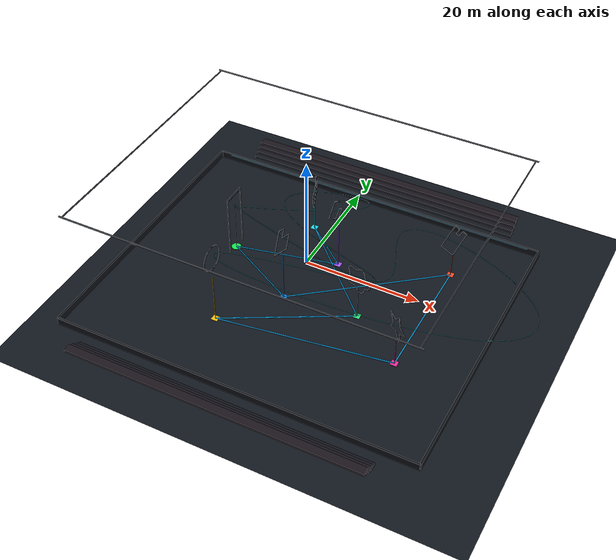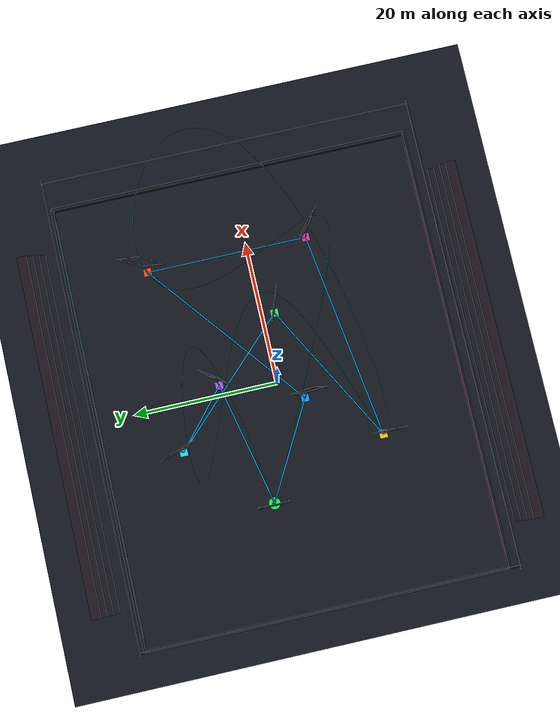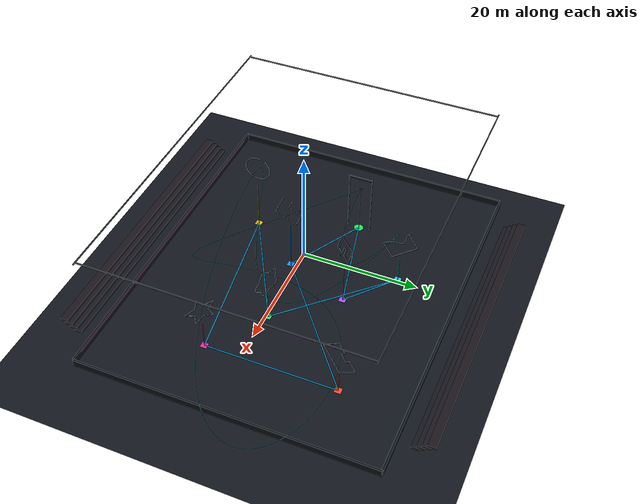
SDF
<?xml version="1.0" ?>
<sdf version="1.9"><world name="seven_unique_high_fidelity">
  <physics name="one_millisecond" type="dart"><max_step_size>0.001</max_step_size><real_time_factor>1</real_time_factor></physics>
  <plugin filename="gz-sim-physics-system" name="gz::sim::systems::Physics"/>
  <plugin filename="gz-sim-user-commands-system" name="gz::sim::systems::UserCommands"/>
  <plugin filename="gz-sim-scene-broadcaster-system" name="gz::sim::systems::SceneBroadcaster"/>
  <plugin filename="gz-sim-contact-system" name="gz::sim::systems::Contact"/>
  <scene><ambient>0.18 0.20 0.25 1</ambient><background>0.025 0.035 0.060 1</background><shadows>true</shadows><grid>true</grid></scene>
  <gui fullscreen="0">
    <plugin filename="MinimalScene" name="Seven-window 3D view">
      <gz-gui><title>Seven-window course</title><property type="bool" key="showTitleBar">false</property><property type="string" key="state">docked</property></gz-gui>
      <engine>ogre2</engine><scene>scene</scene><ambient_light>0.28 0.31 0.38</ambient_light>
      <background_color>0.025 0.035 0.060</background_color>
      <camera_pose>0 -55 42 0 0.56 1.57079632679</camera_pose>
      <camera_clip><near>0.1</near><far>500</far></camera_clip><anti_aliasing>0</anti_aliasing>
    </plugin>
    <plugin filename="GzSceneManager" name="Scene Manager">
      <gz-gui><property key="resizable" type="bool">false</property><property key="width" type="double">5</property><property key="height" type="double">5</property><property key="state" type="string">floating</property><property key="showTitleBar" type="bool">false</property></gz-gui>
    </plugin>
    <plugin filename="InteractiveViewControl" name="Interactive view control">
      <gz-gui><property key="resizable" type="bool">false</property><property key="width" type="double">5</property><property key="height" type="double">5</property><property key="state" type="string">floating</property><property key="showTitleBar" type="bool">false</property></gz-gui>
    </plugin>
  </gui>
  <light type="directional" name="sun"><pose>0 0 40 0 0 0</pose><cast_shadows>true</cast_shadows>
    <diffuse>0.92 0.90 0.86 1</diffuse><specular>0.35 0.35 0.35 1</specular><direction>-0.35 0.22 -0.91</direction>
  </light>
  <light type="point" name="fill"><pose>3 1 22 0 0 0</pose><cast_shadows>false</cast_shadows>
    <diffuse>0.30 0.38 0.55 1</diffuse><attenuation><range>80</range><constant>0.4</constant><linear>0.015</linear><quadratic>0.002</quadratic></attenuation>
  </light>
  <light type="spot" name="flood_nw"><pose>-24 20 15 0 .72 -.68</pose><cast_shadows>true</cast_shadows><diffuse>.62 .72 1 1</diffuse>
    <attenuation><range>80</range><constant>.3</constant><linear>.01</linear><quadratic>.001</quadratic></attenuation><spot><inner_angle>.4</inner_angle><outer_angle>1.15</outer_angle><falloff>.7</falloff></spot></light>
  <light type="spot" name="flood_se"><pose>24 -20 15 0 .72 2.46</pose><cast_shadows>true</cast_shadows><diffuse>1 .55 .72 1</diffuse>
    <attenuation><range>80</range><constant>.3</constant><linear>.01</linear><quadratic>.001</quadratic></attenuation><spot><inner_angle>.4</inner_angle><outer_angle>1.15</outer_angle><falloff>.7</falloff></spot></light>
  <model name="ground"><static>true</static><pose>0 0 -6 0 0 0</pose><link name="ground_link">
    <collision name="ground_collision"><geometry><plane><normal>0 0 1</normal><size>100 100</size></plane></geometry></collision>
    <visual name="ground_visual"><geometry><plane><normal>0 0 1</normal><size>100 100</size></plane></geometry>
      <material><ambient>0.055 0.070 0.095 1</ambient><diffuse>0.075 0.095 0.125 1</diffuse><specular>0.18 0.18 0.18 1</specular>
        <pbr><metal><albedo_map>materials/textures/arena_floor.png</albedo_map><roughness>0.92</roughness><metalness>0.02</metalness></metal></pbr></material>
    </visual></link></model>
  <model name="floor_racing_line"><static>true</static><link name="route"><visual name="route_visual"><geometry><mesh><uri>meshes/floor_racing_line.stl</uri></mesh></geometry>
    <material><ambient>.04 .48 .68 .9</ambient><diffuse>.04 .64 .90 .9</diffuse><emissive>.02 .20 .31 .9</emissive></material>
  </visual></link></model>
  <model name="start_finish_beacon"><static>true</static><pose>-16.0 4.0 -5.96 0 0 0</pose><link name="beacon">
    <visual name="pad"><geometry><cylinder><radius>0.85</radius><length>0.08</length></cylinder></geometry><material><diffuse>0.08 0.95 0.32 1</diffuse><emissive>0.04 0.45 0.12 1</emissive></material></visual>
    <visual name="mast"><pose>0 0 4.56 0 0 0</pose><geometry><cylinder><radius>0.025</radius><length>9.04</length></cylinder></geometry><material><emissive>0.1 1 0.35 1</emissive></material></visual>
  </link></model>
  <model name="accepted_trajectory"><static>true</static><link name="path"><visual name="path_visual"><geometry><mesh><uri>meshes/accepted_trajectory.stl</uri></mesh></geometry>
    <material><ambient>0.10 0.95 0.88 0.78</ambient><diffuse>0.10 0.95 0.88 0.78</diffuse><emissive>0.05 0.55 0.50 0.78</emissive></material>
  </visual></link></model>
  <model name="accepted_quadrotor"><static>true</static><pose>-16.0 4.0 3.2 0 0 0</pose>
      <link name="body"><collision name="audit_body_box"><geometry><box><size>0.53008 0.53008 0.1178</size></box></geometry></collision>
      <visual name="body"><geometry><box><size>0.16 0.11 0.065</size></box></geometry><material><diffuse>0.08 0.10 0.14 1</diffuse><specular>0.8 0.8 0.8 1</specular></material></visual><visual name="arm_0"><pose>0 0 0 0 0 0.7853981633974483</pose><geometry><box><size>0.54 0.018 0.018</size></box></geometry><material><diffuse>0.18 0.20 0.24 1</diffuse></material></visual><visual name="arm_1"><pose>0 0 0 0 0 -0.7853981633974483</pose><geometry><box><size>0.54 0.018 0.018</size></box></geometry><material><diffuse>0.18 0.20 0.24 1</diffuse></material></visual><visual name="rotor_0"><pose>0.205 0.205 0.018 0 0 0</pose><geometry><cylinder><radius>0.058</radius><length>0.006</length></cylinder></geometry><material><diffuse>0.12 0.12 0.12 0.72</diffuse></material></visual><visual name="rotor_1"><pose>-0.205 0.205 0.018 0 0 0</pose><geometry><cylinder><radius>0.058</radius><length>0.006</length></cylinder></geometry><material><diffuse>0.12 0.12 0.12 0.72</diffuse></material></visual><visual name="rotor_2"><pose>-0.205 -0.205 0.018 0 0 0</pose><geometry><cylinder><radius>0.058</radius><length>0.006</length></cylinder></geometry><material><diffuse>0.12 0.12 0.12 0.72</diffuse></material></visual><visual name="rotor_3"><pose>0.205 -0.205 0.018 0 0 0</pose><geometry><cylinder><radius>0.058</radius><length>0.006</length></cylinder></geometry><material><diffuse>0.12 0.12 0.12 0.72</diffuse></material></visual></link></model>
  <model name="north_barrier"><static>true</static><pose>0 26 -5.35 0 0 0</pose><link name="visual_only">
      <visual name="visual"><geometry><box><size>64 0.35 1.3</size></box></geometry>
        <material><ambient>0.045 0.055 0.075 1.000</ambient><diffuse>0.045 0.055 0.075 1.000</diffuse><emissive>0.000 0.000 0.000 1.000</emissive></material>
      </visual></link></model>
<model name="south_barrier"><static>true</static><pose>0 -26 -5.35 0 0 0</pose><link name="visual_only">
      <visual name="visual"><geometry><box><size>64 0.35 1.3</size></box></geometry>
        <material><ambient>0.045 0.055 0.075 1.000</ambient><diffuse>0.045 0.055 0.075 1.000</diffuse><emissive>0.000 0.000 0.000 1.000</emissive></material>
      </visual></link></model>
<model name="east_barrier"><static>true</static><pose>32 0 -5.35 0 0 0</pose><link name="visual_only">
      <visual name="visual"><geometry><box><size>0.35 52 1.3</size></box></geometry>
        <material><ambient>0.045 0.055 0.075 1.000</ambient><diffuse>0.045 0.055 0.075 1.000</diffuse><emissive>0.000 0.000 0.000 1.000</emissive></material>
      </visual></link></model>
<model name="west_barrier"><static>true</static><pose>-32 0 -5.35 0 0 0</pose><link name="visual_only">
      <visual name="visual"><geometry><box><size>0.35 52 1.3</size></box></geometry>
        <material><ambient>0.045 0.055 0.075 1.000</ambient><diffuse>0.045 0.055 0.075 1.000</diffuse><emissive>0.000 0.000 0.000 1.000</emissive></material>
      </visual></link></model>
<model name="stand_0_0"><static>true</static><pose>0 -29 -5.55 0 0 0</pose><link name="visual_only">
      <visual name="visual"><geometry><box><size>52 1.4 0.5</size></box></geometry>
        <material><ambient>0.075 0.085 0.115 1.000</ambient><diffuse>0.075 0.085 0.115 1.000</diffuse><emissive>0.000 0.000 0.000 1.000</emissive></material>
      </visual></link></model>
<model name="stand_0_1"><static>true</static><pose>0 -29.8 -5 0 0 0</pose><link name="visual_only">
      <visual name="visual"><geometry><box><size>52 1.4 0.5</size></box></geometry>
        <material><ambient>0.087 0.085 0.115 1.000</ambient><diffuse>0.087 0.085 0.115 1.000</diffuse><emissive>0.000 0.000 0.000 1.000</emissive></material>
      </visual></link></model>
<model name="stand_0_2"><static>true</static><pose>0 -30.6 -4.45 0 0 0</pose><link name="visual_only">
      <visual name="visual"><geometry><box><size>52 1.4 0.5</size></box></geometry>
        <material><ambient>0.099 0.085 0.115 1.000</ambient><diffuse>0.099 0.085 0.115 1.000</diffuse><emissive>0.000 0.000 0.000 1.000</emissive></material>
      </visual></link></model>
<model name="stand_0_3"><static>true</static><pose>0 -31.4 -3.9 0 0 0</pose><link name="visual_only">
      <visual name="visual"><geometry><box><size>52 1.4 0.5</size></box></geometry>
        <material><ambient>0.111 0.085 0.115 1.000</ambient><diffuse>0.111 0.085 0.115 1.000</diffuse><emissive>0.000 0.000 0.000 1.000</emissive></material>
      </visual></link></model>
<model name="stand_1_0"><static>true</static><pose>0 29 -5.55 0 0 0</pose><link name="visual_only">
      <visual name="visual"><geometry><box><size>52 1.4 0.5</size></box></geometry>
        <material><ambient>0.075 0.085 0.115 1.000</ambient><diffuse>0.075 0.085 0.115 1.000</diffuse><emissive>0.000 0.000 0.000 1.000</emissive></material>
      </visual></link></model>
<model name="stand_1_1"><static>true</static><pose>0 29.8 -5 0 0 0</pose><link name="visual_only">
      <visual name="visual"><geometry><box><size>52 1.4 0.5</size></box></geometry>
        <material><ambient>0.087 0.085 0.115 1.000</ambient><diffuse>0.087 0.085 0.115 1.000</diffuse><emissive>0.000 0.000 0.000 1.000</emissive></material>
      </visual></link></model>
<model name="stand_1_2"><static>true</static><pose>0 30.6 -4.45 0 0 0</pose><link name="visual_only">
      <visual name="visual"><geometry><box><size>52 1.4 0.5</size></box></geometry>
        <material><ambient>0.099 0.085 0.115 1.000</ambient><diffuse>0.099 0.085 0.115 1.000</diffuse><emissive>0.000 0.000 0.000 1.000</emissive></material>
      </visual></link></model>
<model name="stand_1_3"><static>true</static><pose>0 31.4 -3.9 0 0 0</pose><link name="visual_only">
      <visual name="visual"><geometry><box><size>52 1.4 0.5</size></box></geometry>
        <material><ambient>0.111 0.085 0.115 1.000</ambient><diffuse>0.111 0.085 0.115 1.000</diffuse><emissive>0.000 0.000 0.000 1.000</emissive></material>
      </visual></link></model>
<model name="truss_north"><static>true</static><pose>0 23.5 15.5 0 0 0</pose><link name="visual_only">
      <visual name="visual"><geometry><box><size>60 0.18 0.18</size></box></geometry>
        <material><ambient>0.045 0.055 0.075 1.000</ambient><diffuse>0.045 0.055 0.075 1.000</diffuse><emissive>0.000 0.000 0.000 1.000</emissive></material>
      </visual></link></model>
<model name="truss_south"><static>true</static><pose>0 -23.5 15.5 0 0 0</pose><link name="visual_only">
      <visual name="visual"><geometry><box><size>60 0.18 0.18</size></box></geometry>
        <material><ambient>0.045 0.055 0.075 1.000</ambient><diffuse>0.045 0.055 0.075 1.000</diffuse><emissive>0.000 0.000 0.000 1.000</emissive></material>
      </visual></link></model>
<model name="truss_east"><static>true</static><pose>29.5 0 15.5 0 0 0</pose><link name="visual_only">
      <visual name="visual"><geometry><box><size>0.18 47 0.18</size></box></geometry>
        <material><ambient>0.045 0.055 0.075 1.000</ambient><diffuse>0.045 0.055 0.075 1.000</diffuse><emissive>0.000 0.000 0.000 1.000</emissive></material>
      </visual></link></model>
<model name="truss_west"><static>true</static><pose>-29.5 0 15.5 0 0 0</pose><link name="visual_only">
      <visual name="visual"><geometry><box><size>0.18 47 0.18</size></box></geometry>
        <material><ambient>0.045 0.055 0.075 1.000</ambient><diffuse>0.045 0.055 0.075 1.000</diffuse><emissive>0.000 0.000 0.000 1.000</emissive></material>
      </visual></link></model>
<model name="north_led"><static>true</static><pose>0 25.78 -4.9 0 0 0</pose><link name="visual_only">
      <visual name="visual"><geometry><box><size>60 0.04 0.09</size></box></geometry>
        <material><ambient>0.050 0.720 1.000 1.000</ambient><diffuse>0.050 0.720 1.000 1.000</diffuse><emissive>0.050 0.720 1.000 1.000</emissive></material>
      </visual></link></model>
<model name="south_led"><static>true</static><pose>0 -25.78 -4.9 0 0 0</pose><link name="visual_only">
      <visual name="visual"><geometry><box><size>60 0.04 0.09</size></box></geometry>
        <material><ambient>0.950 0.100 0.520 1.000</ambient><diffuse>0.950 0.100 0.520 1.000</diffuse><emissive>0.950 0.100 0.520 1.000</emissive></material>
      </visual></link></model>
<model name="start_arch_left"><static>true</static><pose>-16 1.9 -0.2 0 0 0</pose><link name="visual_only">
      <visual name="visual"><geometry><box><size>0.18 0.18 11.6</size></box></geometry>
        <material><ambient>0.045 0.055 0.075 1.000</ambient><diffuse>0.045 0.055 0.075 1.000</diffuse><emissive>0.000 0.000 0.000 1.000</emissive></material>
      </visual></link></model>
<model name="start_arch_right"><static>true</static><pose>-16 6.1 -0.2 0 0 0</pose><link name="visual_only">
      <visual name="visual"><geometry><box><size>0.18 0.18 11.6</size></box></geometry>
        <material><ambient>0.045 0.055 0.075 1.000</ambient><diffuse>0.045 0.055 0.075 1.000</diffuse><emissive>0.000 0.000 0.000 1.000</emissive></material>
      </visual></link></model>
<model name="start_arch_header"><static>true</static><pose>-16 4 5.6 0 0 0</pose><link name="visual_only">
      <visual name="visual"><geometry><box><size>0.2 4.4 0.35</size></box></geometry>
        <material><ambient>0.045 0.055 0.075 1.000</ambient><diffuse>0.045 0.055 0.075 1.000</diffuse><emissive>0.000 0.000 0.000 1.000</emissive></material>
      </visual></link></model>
<model name="start_arch_cyan"><static>true</static><pose>-16.105 3 5.6 0 0 0</pose><link name="visual_only">
      <visual name="visual"><geometry><box><size>0.04 1.9 0.13</size></box></geometry>
        <material><ambient>0.050 0.720 1.000 1.000</ambient><diffuse>0.050 0.720 1.000 1.000</diffuse><emissive>0.050 0.720 1.000 1.000</emissive></material>
      </visual></link></model>
<model name="start_arch_magenta"><static>true</static><pose>-16.105 5 5.6 0 0 0</pose><link name="visual_only">
      <visual name="visual"><geometry><box><size>0.04 1.9 0.13</size></box></geometry>
        <material><ambient>0.950 0.100 0.520 1.000</ambient><diffuse>0.950 0.100 0.520 1.000</diffuse><emissive>0.950 0.100 0.520 1.000</emissive></material>
      </visual></link></model>
<model name="gate_01_tower"><static>true</static><pose>-2.42 -3.52 -1.34171 0 0 0</pose><link name="visual_only">
      <visual name="visual"><geometry><box><size>0.09 0.09 9.31657</size></box></geometry>
        <material><ambient>0.100 0.580 1.000 1.000</ambient><diffuse>0.100 0.580 1.000 1.000</diffuse><emissive>0.022 0.128 0.220 1.000</emissive></material>
      </visual></link></model>
<model name="gate_01_marker"><static>true</static><pose>-2.42 -3.52 -5.88 0 0 0</pose><link name="visual_only">
      <visual name="visual"><geometry><box><size>1.15 1.15 0.05</size></box></geometry>
        <material><ambient>0.100 0.580 1.000 1.000</ambient><diffuse>0.100 0.580 1.000 1.000</diffuse><emissive>0.100 0.580 1.000 1.000</emissive></material>
      </visual></link></model>
<model name="gate_02_tower"><static>true</static><pose>20.24 14.52 -3.86828 0 0 0</pose><link name="visual_only">
      <visual name="visual"><geometry><box><size>0.09 0.09 4.26344</size></box></geometry>
        <material><ambient>1.000 0.300 0.160 1.000</ambient><diffuse>1.000 0.300 0.160 1.000</diffuse><emissive>0.220 0.066 0.035 1.000</emissive></material>
      </visual></link></model>
<model name="gate_02_marker"><static>true</static><pose>20.24 14.52 -5.88 0 0 0</pose><link name="visual_only">
      <visual name="visual"><geometry><box><size>1.15 1.15 0.05</size></box></geometry>
        <material><ambient>1.000 0.300 0.160 1.000</ambient><diffuse>1.000 0.300 0.160 1.000</diffuse><emissive>1.000 0.300 0.160 1.000</emissive></material>
      </visual></link></model>
<model name="gate_03_tower"><static>true</static><pose>20.24 -8.8 -3.3375 0 0 0</pose><link name="visual_only">
      <visual name="visual"><geometry><box><size>0.09 0.09 5.325</size></box></geometry>
        <material><ambient>0.920 0.180 0.620 1.000</ambient><diffuse>0.920 0.180 0.620 1.000</diffuse><emissive>0.202 0.040 0.136 1.000</emissive></material>
      </visual></link></model>
<model name="gate_03_marker"><static>true</static><pose>20.24 -8.8 -5.88 0 0 0</pose><link name="visual_only">
      <visual name="visual"><geometry><box><size>1.15 1.15 0.05</size></box></geometry>
        <material><ambient>0.920 0.180 0.620 1.000</ambient><diffuse>0.920 0.180 0.620 1.000</diffuse><emissive>0.920 0.180 0.620 1.000</emissive></material>
      </visual></link></model>
<model name="gate_04_tower"><static>true</static><pose>-9.9 -13.2 -1.4275 0 0 0</pose><link name="visual_only">
      <visual name="visual"><geometry><box><size>0.09 0.09 9.145</size></box></geometry>
        <material><ambient>0.980 0.760 0.080 1.000</ambient><diffuse>0.980 0.760 0.080 1.000</diffuse><emissive>0.216 0.167 0.018 1.000</emissive></material>
      </visual></link></model>
<model name="gate_04_marker"><static>true</static><pose>-9.9 -13.2 -5.88 0 0 0</pose><link name="visual_only">
      <visual name="visual"><geometry><box><size>1.15 1.15 0.05</size></box></geometry>
        <material><ambient>0.980 0.760 0.080 1.000</ambient><diffuse>0.980 0.760 0.080 1.000</diffuse><emissive>0.980 0.760 0.080 1.000</emissive></material>
      </visual></link></model>
<model name="gate_05_tower"><static>true</static><pose>10.45 -1.98 -3.3375 0 0 0</pose><link name="visual_only">
      <visual name="visual"><geometry><box><size>0.09 0.09 5.325</size></box></geometry>
        <material><ambient>0.180 0.900 0.480 1.000</ambient><diffuse>0.180 0.900 0.480 1.000</diffuse><emissive>0.040 0.198 0.106 1.000</emissive></material>
      </visual></link></model>
<model name="gate_05_marker"><static>true</static><pose>10.45 -1.98 -5.88 0 0 0</pose><link name="visual_only">
      <visual name="visual"><geometry><box><size>1.15 1.15 0.05</size></box></geometry>
        <material><ambient>0.180 0.900 0.480 1.000</ambient><diffuse>0.180 0.900 0.480 1.000</diffuse><emissive>0.180 0.900 0.480 1.000</emissive></material>
      </visual></link></model>
<model name="gate_06_tower"><static>true</static><pose>-6.16 14.96 -3.49751 0 0 0</pose><link name="visual_only">
      <visual name="visual"><geometry><box><size>0.09 0.09 5.00498</size></box></geometry>
        <material><ambient>0.120 0.880 0.940 1.000</ambient><diffuse>0.120 0.880 0.940 1.000</diffuse><emissive>0.026 0.194 0.207 1.000</emissive></material>
      </visual></link></model>
<model name="gate_06_marker"><static>true</static><pose>-6.16 14.96 -5.88 0 0 0</pose><link name="visual_only">
      <visual name="visual"><geometry><box><size>1.15 1.15 0.05</size></box></geometry>
        <material><ambient>0.120 0.880 0.940 1.000</ambient><diffuse>0.120 0.880 0.940 1.000</diffuse><emissive>0.120 0.880 0.940 1.000</emissive></material>
      </visual></link></model>
<model name="gate_07_tower"><static>true</static><pose>2 8 -1.79313 0 0 0</pose><link name="visual_only">
      <visual name="visual"><geometry><box><size>0.09 0.09 8.41374</size></box></geometry>
        <material><ambient>0.670 0.350 1.000 1.000</ambient><diffuse>0.670 0.350 1.000 1.000</diffuse><emissive>0.147 0.077 0.220 1.000</emissive></material>
      </visual></link></model>
<model name="gate_07_marker"><static>true</static><pose>2 8 -5.88 0 0 0</pose><link name="visual_only">
      <visual name="visual"><geometry><box><size>1.15 1.15 0.05</size></box></geometry>
        <material><ambient>0.670 0.350 1.000 1.000</ambient><diffuse>0.670 0.350 1.000 1.000</diffuse><emissive>0.670 0.350 1.000 1.000</emissive></material>
      </visual></link></model>
  <model name="gate_01_W1_L">
      <pose>-2.42 -3.52 6.48 0 -1.57079632679 0</pose>
      <self_collide>false</self_collide>
      <link name="base">
        <gravity>false</gravity>
        <inertial><mass>1</mass><inertia><ixx>1</ixx><iyy>1</iyy><izz>1</izz></inertia></inertial>
      </link>
      <link name="frame"><pose relative_to="base">0 0 0 0 0 0.4</pose><gravity>false</gravity>
        <inertial><mass>8</mass><inertia><ixx>40</ixx><iyy>40</iyy><izz>40</izz></inertia></inertial>
        <collision name="frame_collision"><geometry><mesh><uri>meshes/gate_01_L_collision.stl</uri></mesh></geometry>
          <surface><contact><collide_bitmask>0xffff</collide_bitmask></contact>
          <friction><ode><mu>0.8</mu><mu2>0.8</mu2></ode></friction>
          <bounce><restitution_coefficient>.16</restitution_coefficient><threshold>.05</threshold></bounce></surface>
        </collision>
        <visual name="foam_sleeve"><geometry><mesh><uri>meshes/gate_01_L_sleeve.stl</uri></mesh></geometry>
          <material><ambient>0.025 0.030 0.040 1</ambient><diffuse>0.055 0.065 0.085 1</diffuse>
          <specular>0.14 0.14 0.16 1</specular></material>
        </visual>
        <visual name="led_inner_edge"><geometry><mesh><uri>meshes/gate_01_L_visual_core.stl</uri></mesh></geometry>
          <material><ambient>0.100 0.580 1.000 1.000</ambient><diffuse>0.100 0.580 1.000 1.000</diffuse>
          <specular>0.75 0.75 0.75 1</specular><emissive>0.100 0.580 1.000 1.000</emissive></material>
        </visual>
      </link>
      <joint name="world_fixed" type="fixed"><parent>world</parent><child>base</child></joint>
      <joint name="spin" type="revolute"><parent>base</parent><child>frame</child>
        <axis><xyz>0 0 1</xyz><limit><lower>-1e16</lower><upper>1e16</upper>
        <velocity>100</velocity><effort>1e9</effort></limit><dynamics><damping>0</damping></dynamics></axis>
      </joint>
      <plugin filename="gz-sim-joint-controller-system" name="gz::sim::systems::JointController">
        <joint_name>spin</joint_name><initial_velocity>5</initial_velocity>
      </plugin>
      <plugin filename="gz-sim-joint-state-publisher-system" name="gz::sim::systems::JointStatePublisher">
        <joint_name>spin</joint_name><topic>/seven_unique/gate_01/joint_state</topic>
      </plugin>
    </model>
<model name="gate_02_W2_U">
      <pose>20.24 14.52 1.8 0 -1.57079632679 -0.349065850399</pose>
      <self_collide>false</self_collide>
      <link name="base">
        <gravity>false</gravity>
        <inertial><mass>1</mass><inertia><ixx>1</ixx><iyy>1</iyy><izz>1</izz></inertia></inertial>
      </link>
      <link name="frame"><pose relative_to="base">0 0 0 0 0 -0.7</pose><gravity>false</gravity>
        <inertial><mass>8</mass><inertia><ixx>40</ixx><iyy>40</iyy><izz>40</izz></inertia></inertial>
        <collision name="frame_collision"><geometry><mesh><uri>meshes/gate_02_U_collision.stl</uri></mesh></geometry>
          <surface><contact><collide_bitmask>0xffff</collide_bitmask></contact>
          <friction><ode><mu>0.8</mu><mu2>0.8</mu2></ode></friction>
          <bounce><restitution_coefficient>.16</restitution_coefficient><threshold>.05</threshold></bounce></surface>
        </collision>
        <visual name="foam_sleeve"><geometry><mesh><uri>meshes/gate_02_U_sleeve.stl</uri></mesh></geometry>
          <material><ambient>0.025 0.030 0.040 1</ambient><diffuse>0.055 0.065 0.085 1</diffuse>
          <specular>0.14 0.14 0.16 1</specular></material>
        </visual>
        <visual name="led_inner_edge"><geometry><mesh><uri>meshes/gate_02_U_visual_core.stl</uri></mesh></geometry>
          <material><ambient>1.000 0.300 0.160 1.000</ambient><diffuse>1.000 0.300 0.160 1.000</diffuse>
          <specular>0.75 0.75 0.75 1</specular><emissive>1.000 0.300 0.160 1.000</emissive></material>
        </visual>
      </link>
      <joint name="world_fixed" type="fixed"><parent>world</parent><child>base</child></joint>
      <joint name="spin" type="revolute"><parent>base</parent><child>frame</child>
        <axis><xyz>0 0 1</xyz><limit><lower>-1e16</lower><upper>1e16</upper>
        <velocity>100</velocity><effort>1e9</effort></limit><dynamics><damping>0</damping></dynamics></axis>
      </joint>
      <plugin filename="gz-sim-joint-controller-system" name="gz::sim::systems::JointController">
        <joint_name>spin</joint_name><initial_velocity>-4</initial_velocity>
      </plugin>
      <plugin filename="gz-sim-joint-state-publisher-system" name="gz::sim::systems::JointStatePublisher">
        <joint_name>spin</joint_name><topic>/seven_unique/gate_02/joint_state</topic>
      </plugin>
    </model>
<model name="gate_03_W3_star">
      <pose>20.24 -8.8 2.16 0 -1.57079632679 -2.26892802759</pose>
      <self_collide>false</self_collide>
      <link name="base">
        <gravity>false</gravity>
        <inertial><mass>1</mass><inertia><ixx>1</ixx><iyy>1</iyy><izz>1</izz></inertia></inertial>
      </link>
      <link name="frame"><pose relative_to="base">0 0 0 0 0 0.55</pose><gravity>false</gravity>
        <inertial><mass>8</mass><inertia><ixx>40</ixx><iyy>40</iyy><izz>40</izz></inertia></inertial>
        <collision name="frame_collision"><geometry><mesh><uri>meshes/gate_03_star_collision.stl</uri></mesh></geometry>
          <surface><contact><collide_bitmask>0xffff</collide_bitmask></contact>
          <friction><ode><mu>0.8</mu><mu2>0.8</mu2></ode></friction>
          <bounce><restitution_coefficient>.16</restitution_coefficient><threshold>.05</threshold></bounce></surface>
        </collision>
        <visual name="foam_sleeve"><geometry><mesh><uri>meshes/gate_03_star_sleeve.stl</uri></mesh></geometry>
          <material><ambient>0.025 0.030 0.040 1</ambient><diffuse>0.055 0.065 0.085 1</diffuse>
          <specular>0.14 0.14 0.16 1</specular></material>
        </visual>
        <visual name="led_inner_edge"><geometry><mesh><uri>meshes/gate_03_star_visual_core.stl</uri></mesh></geometry>
          <material><ambient>0.920 0.180 0.620 1.000</ambient><diffuse>0.920 0.180 0.620 1.000</diffuse>
          <specular>0.75 0.75 0.75 1</specular><emissive>0.920 0.180 0.620 1.000</emissive></material>
        </visual>
      </link>
      <joint name="world_fixed" type="fixed"><parent>world</parent><child>base</child></joint>
      <joint name="spin" type="revolute"><parent>base</parent><child>frame</child>
        <axis><xyz>0 0 1</xyz><limit><lower>-1e16</lower><upper>1e16</upper>
        <velocity>100</velocity><effort>1e9</effort></limit><dynamics><damping>0</damping></dynamics></axis>
      </joint>
      <plugin filename="gz-sim-joint-controller-system" name="gz::sim::systems::JointController">
        <joint_name>spin</joint_name><initial_velocity>4.5</initial_velocity>
      </plugin>
      <plugin filename="gz-sim-joint-state-publisher-system" name="gz::sim::systems::JointStatePublisher">
        <joint_name>spin</joint_name><topic>/seven_unique/gate_03/joint_state</topic>
      </plugin>
    </model>
<model name="gate_04_W4_limacon">
      <pose>-9.9 -13.2 6.3 0 -1.57079632679 3.14159265359</pose>
      <self_collide>false</self_collide>
      <link name="base">
        <gravity>false</gravity>
        <inertial><mass>1</mass><inertia><ixx>1</ixx><iyy>1</iyy><izz>1</izz></inertia></inertial>
      </link>
      <link name="frame"><pose relative_to="base">0 0 0 0 0 -0.35</pose><gravity>false</gravity>
        <inertial><mass>8</mass><inertia><ixx>40</ixx><iyy>40</iyy><izz>40</izz></inertia></inertial>
        <collision name="frame_collision"><geometry><mesh><uri>meshes/gate_04_limacon_collision.stl</uri></mesh></geometry>
          <surface><contact><collide_bitmask>0xffff</collide_bitmask></contact>
          <friction><ode><mu>0.8</mu><mu2>0.8</mu2></ode></friction>
          <bounce><restitution_coefficient>.16</restitution_coefficient><threshold>.05</threshold></bounce></surface>
        </collision>
        <visual name="foam_sleeve"><geometry><mesh><uri>meshes/gate_04_limacon_sleeve.stl</uri></mesh></geometry>
          <material><ambient>0.025 0.030 0.040 1</ambient><diffuse>0.055 0.065 0.085 1</diffuse>
          <specular>0.14 0.14 0.16 1</specular></material>
        </visual>
        <visual name="led_inner_edge"><geometry><mesh><uri>meshes/gate_04_limacon_visual_core.stl</uri></mesh></geometry>
          <material><ambient>0.980 0.760 0.080 1.000</ambient><diffuse>0.980 0.760 0.080 1.000</diffuse>
          <specular>0.75 0.75 0.75 1</specular><emissive>0.980 0.760 0.080 1.000</emissive></material>
        </visual>
      </link>
      <joint name="world_fixed" type="fixed"><parent>world</parent><child>base</child></joint>
      <joint name="spin" type="revolute"><parent>base</parent><child>frame</child>
        <axis><xyz>0 0 1</xyz><limit><lower>-1e16</lower><upper>1e16</upper>
        <velocity>100</velocity><effort>1e9</effort></limit><dynamics><damping>0</damping></dynamics></axis>
      </joint>
      <plugin filename="gz-sim-joint-controller-system" name="gz::sim::systems::JointController">
        <joint_name>spin</joint_name><initial_velocity>-5</initial_velocity>
      </plugin>
      <plugin filename="gz-sim-joint-state-publisher-system" name="gz::sim::systems::JointStatePublisher">
        <joint_name>spin</joint_name><topic>/seven_unique/gate_04/joint_state</topic>
      </plugin>
    </model>
<model name="gate_05_W5_wavy">
      <pose>10.45 -1.98 2.16 0 -1.57079632679 1.2217304764</pose>
      <self_collide>false</self_collide>
      <link name="base">
        <gravity>false</gravity>
        <inertial><mass>1</mass><inertia><ixx>1</ixx><iyy>1</iyy><izz>1</izz></inertia></inertial>
      </link>
      <link name="frame"><pose relative_to="base">0 0 0 0 0 0.9</pose><gravity>false</gravity>
        <inertial><mass>8</mass><inertia><ixx>40</ixx><iyy>40</iyy><izz>40</izz></inertia></inertial>
        <collision name="frame_collision"><geometry><mesh><uri>meshes/gate_05_wavy_collision.stl</uri></mesh></geometry>
          <surface><contact><collide_bitmask>0xffff</collide_bitmask></contact>
          <friction><ode><mu>0.8</mu><mu2>0.8</mu2></ode></friction>
          <bounce><restitution_coefficient>.16</restitution_coefficient><threshold>.05</threshold></bounce></surface>
        </collision>
        <visual name="foam_sleeve"><geometry><mesh><uri>meshes/gate_05_wavy_sleeve.stl</uri></mesh></geometry>
          <material><ambient>0.025 0.030 0.040 1</ambient><diffuse>0.055 0.065 0.085 1</diffuse>
          <specular>0.14 0.14 0.16 1</specular></material>
        </visual>
        <visual name="led_inner_edge"><geometry><mesh><uri>meshes/gate_05_wavy_visual_core.stl</uri></mesh></geometry>
          <material><ambient>0.180 0.900 0.480 1.000</ambient><diffuse>0.180 0.900 0.480 1.000</diffuse>
          <specular>0.75 0.75 0.75 1</specular><emissive>0.180 0.900 0.480 1.000</emissive></material>
        </visual>
      </link>
      <joint name="world_fixed" type="fixed"><parent>world</parent><child>base</child></joint>
      <joint name="spin" type="revolute"><parent>base</parent><child>frame</child>
        <axis><xyz>0 0 1</xyz><limit><lower>-1e16</lower><upper>1e16</upper>
        <velocity>100</velocity><effort>1e9</effort></limit><dynamics><damping>0</damping></dynamics></axis>
      </joint>
      <plugin filename="gz-sim-joint-controller-system" name="gz::sim::systems::JointController">
        <joint_name>spin</joint_name><initial_velocity>5.5</initial_velocity>
      </plugin>
      <plugin filename="gz-sim-joint-state-publisher-system" name="gz::sim::systems::JointStatePublisher">
        <joint_name>spin</joint_name><topic>/seven_unique/gate_05/joint_state</topic>
      </plugin>
    </model>
<model name="gate_06_W6_line_bezier">
      <pose>-6.16 14.96 2.16 0 -1.57079632679 3.49065850399</pose>
      <self_collide>false</self_collide>
      <link name="base">
        <gravity>false</gravity>
        <inertial><mass>1</mass><inertia><ixx>1</ixx><iyy>1</iyy><izz>1</izz></inertia></inertial>
      </link>
      <link name="frame"><pose relative_to="base">0 0 0 0 0 -1.1</pose><gravity>false</gravity>
        <inertial><mass>8</mass><inertia><ixx>40</ixx><iyy>40</iyy><izz>40</izz></inertia></inertial>
        <collision name="frame_collision"><geometry><mesh><uri>meshes/gate_06_line_bezier_collision.stl</uri></mesh></geometry>
          <surface><contact><collide_bitmask>0xffff</collide_bitmask></contact>
          <friction><ode><mu>0.8</mu><mu2>0.8</mu2></ode></friction>
          <bounce><restitution_coefficient>.16</restitution_coefficient><threshold>.05</threshold></bounce></surface>
        </collision>
        <visual name="foam_sleeve"><geometry><mesh><uri>meshes/gate_06_line_bezier_sleeve.stl</uri></mesh></geometry>
          <material><ambient>0.025 0.030 0.040 1</ambient><diffuse>0.055 0.065 0.085 1</diffuse>
          <specular>0.14 0.14 0.16 1</specular></material>
        </visual>
        <visual name="led_inner_edge"><geometry><mesh><uri>meshes/gate_06_line_bezier_visual_core.stl</uri></mesh></geometry>
          <material><ambient>0.120 0.880 0.940 1.000</ambient><diffuse>0.120 0.880 0.940 1.000</diffuse>
          <specular>0.75 0.75 0.75 1</specular><emissive>0.120 0.880 0.940 1.000</emissive></material>
        </visual>
      </link>
      <joint name="world_fixed" type="fixed"><parent>world</parent><child>base</child></joint>
      <joint name="spin" type="revolute"><parent>base</parent><child>frame</child>
        <axis><xyz>0 0 1</xyz><limit><lower>-1e16</lower><upper>1e16</upper>
        <velocity>100</velocity><effort>1e9</effort></limit><dynamics><damping>0</damping></dynamics></axis>
      </joint>
      <plugin filename="gz-sim-joint-controller-system" name="gz::sim::systems::JointController">
        <joint_name>spin</joint_name><initial_velocity>-15</initial_velocity>
      </plugin>
      <plugin filename="gz-sim-joint-state-publisher-system" name="gz::sim::systems::JointStatePublisher">
        <joint_name>spin</joint_name><topic>/seven_unique/gate_06/joint_state</topic>
      </plugin>
    </model>
<model name="gate_07_W7_balanced_U">
      <pose>2 8 5.5 0 -1.57079632679 2.53072741539</pose>
      <self_collide>false</self_collide>
      <link name="base">
        <gravity>false</gravity>
        <inertial><mass>1</mass><inertia><ixx>1</ixx><iyy>1</iyy><izz>1</izz></inertia></inertial>
      </link>
      <link name="frame"><pose relative_to="base">0 0 0 0 0 1.25</pose><gravity>false</gravity>
        <inertial><mass>8</mass><inertia><ixx>40</ixx><iyy>40</iyy><izz>40</izz></inertia></inertial>
        <collision name="frame_collision"><geometry><mesh><uri>meshes/gate_07_balanced_U_collision.stl</uri></mesh></geometry>
          <surface><contact><collide_bitmask>0xffff</collide_bitmask></contact>
          <friction><ode><mu>0.8</mu><mu2>0.8</mu2></ode></friction>
          <bounce><restitution_coefficient>.16</restitution_coefficient><threshold>.05</threshold></bounce></surface>
        </collision>
        <visual name="foam_sleeve"><geometry><mesh><uri>meshes/gate_07_balanced_U_sleeve.stl</uri></mesh></geometry>
          <material><ambient>0.025 0.030 0.040 1</ambient><diffuse>0.055 0.065 0.085 1</diffuse>
          <specular>0.14 0.14 0.16 1</specular></material>
        </visual>
        <visual name="led_inner_edge"><geometry><mesh><uri>meshes/gate_07_balanced_U_visual_core.stl</uri></mesh></geometry>
          <material><ambient>0.670 0.350 1.000 1.000</ambient><diffuse>0.670 0.350 1.000 1.000</diffuse>
          <specular>0.75 0.75 0.75 1</specular><emissive>0.670 0.350 1.000 1.000</emissive></material>
        </visual>
      </link>
      <joint name="world_fixed" type="fixed"><parent>world</parent><child>base</child></joint>
      <joint name="spin" type="revolute"><parent>base</parent><child>frame</child>
        <axis><xyz>0 0 1</xyz><limit><lower>-1e16</lower><upper>1e16</upper>
        <velocity>100</velocity><effort>1e9</effort></limit><dynamics><damping>0</damping></dynamics></axis>
      </joint>
      <plugin filename="gz-sim-joint-controller-system" name="gz::sim::systems::JointController">
        <joint_name>spin</joint_name><initial_velocity>18</initial_velocity>
      </plugin>
      <plugin filename="gz-sim-joint-state-publisher-system" name="gz::sim::systems::JointStatePublisher">
        <joint_name>spin</joint_name><topic>/seven_unique/gate_07/joint_state</topic>
      </plugin>
    </model>
</world></sdf>
